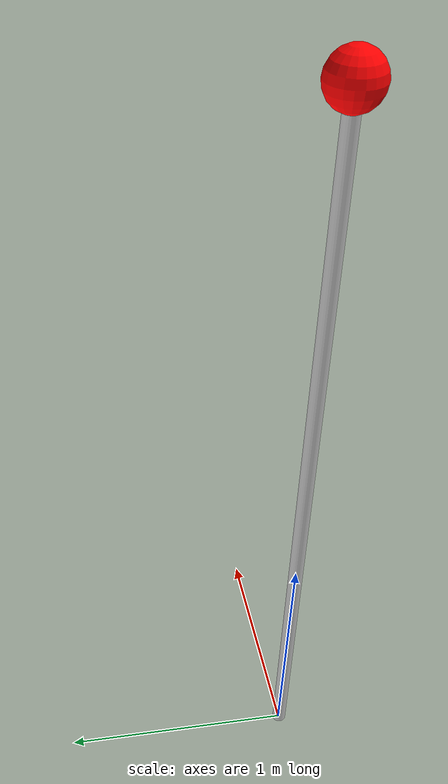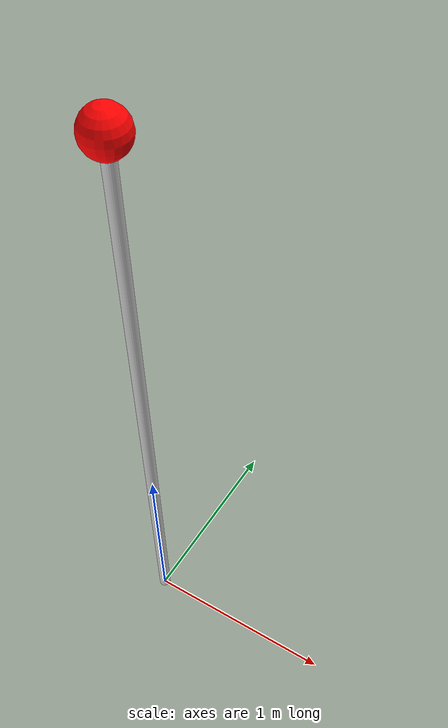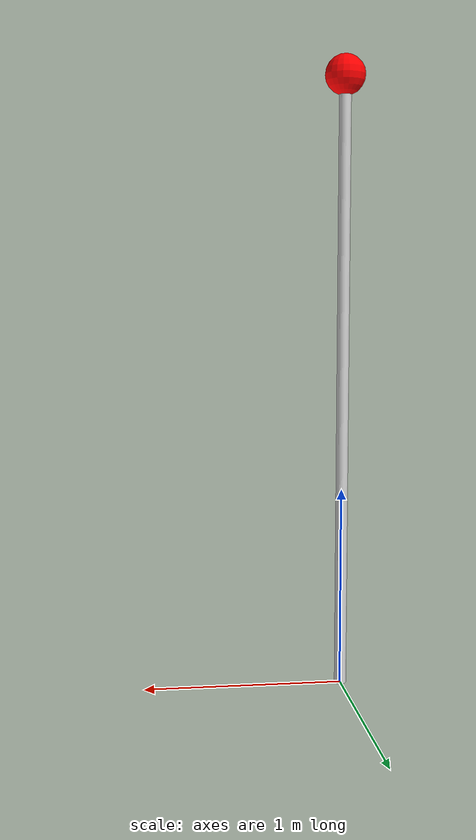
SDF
<?xml version='1.0'?>
<sdf version="1.6">
  <model name="target1">

    <static>true</static>

    <link name="pole_link">
      <pose>0 0 1.5 0 0 0</pose>

      <visual name="pole_visual">
        <geometry>
          <cylinder>
            <radius>0.03</radius>
            <length>3</length>
          </cylinder>
        </geometry>
        <material>
          <ambient>0.8 0.8 0.8 1</ambient>
          <diffuse>0.8 0.8 0.8 1</diffuse>
        </material>
      </visual>

      <collision name="pole_collision">
        <geometry>
          <cylinder>
            <radius>0.03</radius>
            <length>3</length>
          </cylinder>
        </geometry>
      </collision>
    </link>

    <link name="ball_link">
      <pose>0 0 3.05 0 0 0</pose>

      <visual name="ball_visual">
        <geometry>
          <sphere>
            <radius>0.1</radius>
          </sphere>
        </geometry>
        <material>
          <ambient>1 0 0 1</ambient>
          <diffuse>1 0 0 1</diffuse>
        </material>
      </visual>

      <collision name="ball_collision">
        <geometry>
          <sphere>
            <radius>0.1</radius>
          </sphere>
        </geometry>
      </collision>
    </link>

    <joint name="ball_joint" type="fixed">
      <parent>pole_link</parent>
      <child>ball_link</child>
    </joint>

    <plugin name="ball_pose_publisher" filename="libgazebo_ros_p3d.so">
      <ros>
        <namespace>/TARGET_NAMESPACE</namespace>
        <remapping>odom:=pose</remapping>
      </ros>
      <body_name>ball_link</body_name>
      <frame_name>world</frame_name>
      <update_rate>30.0</update_rate>
    </plugin>

  </model>
</sdf>
